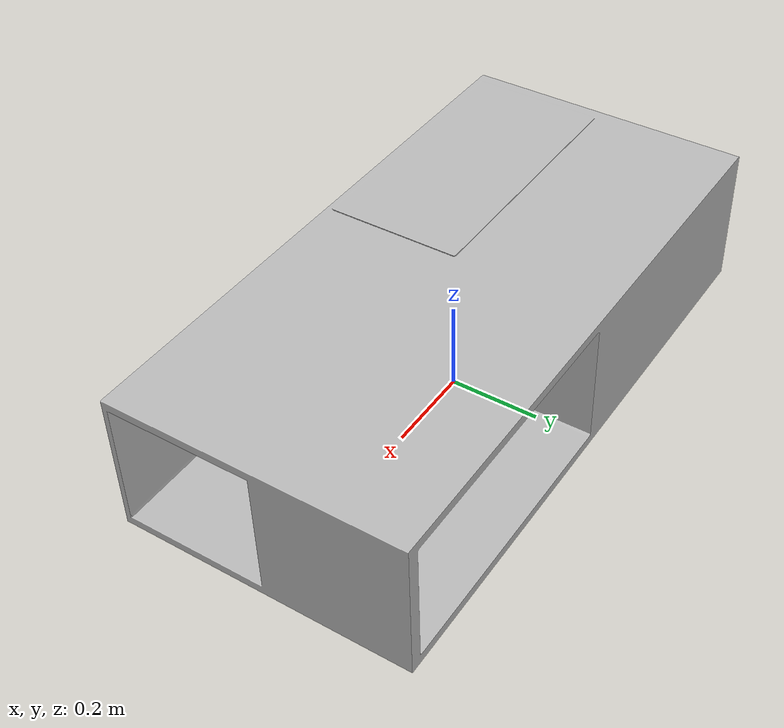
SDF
<?xml version="1.0"?>
<sdf version="1.6">
  <model name="aws_robomaker_residential_CoffeeTable_01">
    <link name="link_CoffeeTable_01">
      <inertial>
        <mass>21.7</mass>
        <inertia>
          <ixx>0.8137499999999998</ixx>
          <ixy>0</ixy>
          <ixz>0</ixz>
          <iyy>2.76675</iyy>
          <iyz>0</iyz>
          <izz>3.254</izz>
        </inertia>
      </inertial>
      <collision name="collision">
        <geometry>
          <mesh>
            <uri>model://aws_robomaker_residential_CoffeeTable_01/meshes/aws_CoffeeTable_01_collision.DAE</uri>
            <scale>1 1 1</scale>
          </mesh>
        </geometry>
        <surface>
          <contact>
            <ode>
              <max_vel>0.01</max_vel>
            </ode>
          </contact>
        </surface>
      </collision>
      <visual name="visual">
        <geometry>
          <mesh>
            <uri>model://aws_robomaker_residential_CoffeeTable_01/meshes/aws_CoffeeTable_01_visual.DAE</uri>
          </mesh>
        </geometry>
        <meta>
          <layer> 1 </layer>
        </meta>
      </visual>
    </link>
    <static>1</static>
  </model>
</sdf>
